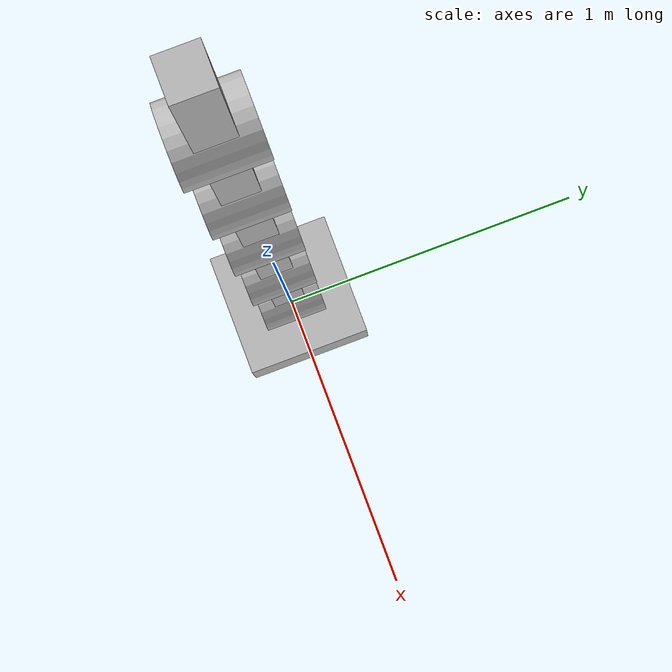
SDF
<?xml version='1.0'?>
<sdf version="1.4">
<model name="my_model">
  <static>false</static>
  <link name="base">
            <pose>0 0 .1 0 0 0</pose>
            <inertial>
                <pose>0 0 0 0 0 0</pose>
                <inertia>
                    <ixx>0.01</ixx>
                    <ixy>0</ixy>
                    <ixz>0</ixz>
                    <iyy>0.01</iyy>
                    <iyz>0</iyz>
                    <izz>0.01</izz>
                </inertia>
                <mass>10</mass>
            </inertial>
            <collision name="collision">
                <geometry>
                    <box>
                        <size>0.4 0.4 0.2</size>
                    </box>
                </geometry>
            </collision>
            <visual name="visual">
                <geometry>
                    <box>
                        <size>0.4 0.4 0.2</size>
                    </box>
                </geometry>
            </visual>
        </link>
  <link name="joint1">
        <pose>0 0 0.3 0 1.5707 1.5707</pose>
        <collision name="collision">
          <geometry>
            <cylinder>
              <radius>.1</radius>
              <length>.2</length>
            </cylinder>
          </geometry>
        </collision>
        <visual name="visual">
          <geometry>
            <cylinder>
              <radius>.1</radius>
              <length>.2</length>
            </cylinder>
          </geometry>
        </visual>
      </link>
    <link name="link">
     <pose>0 0 .66 0 0 0</pose>
      <inertial>
        <mass>.25</mass>
        <inertia> <!-- interias are tricky to compute -->
          <ixx>0.083</ixx>       <!-- for a box: ixx = 0.083 * mass * (y*y + z*z) -->
          <ixy>0.0</ixy>         <!-- for a box: ixy = 0 -->
          <ixz>0.0</ixz>         <!-- for a box: ixz = 0 -->
          <iyy>0.083</iyy>       <!-- for a box: iyy = 0.083 * mass * (x*x + z*z) -->
          <iyz>0.0</iyz>         <!-- for a box: iyz = 0 -->
          <izz>0.083</izz>       <!-- for a box: izz = 0.083 * mass * (x*x + y*y) -->
        </inertia>
      </inertial>
      <collision name="collision">
        <geometry>
          <box>
            <size>.1 .1 .5</size>
          </box>
        </geometry>
      </collision>
      <visual name="visual">
        <geometry>
          <box>
            <size>.1 .1 .5</size>
          </box>
        </geometry>
      </visual>
    </link>
  <link name="joint2">
        <pose>0 0 1.01 0 1.5707 1.5707</pose>
        <collision name="collision">
          <geometry>
            <cylinder>
              <radius>.1</radius>
              <length>.2</length>
            </cylinder>
          </geometry>
        </collision>
        <visual name="visual">
          <geometry>
            <cylinder>
              <radius>.1</radius>
              <length>.2</length>
            </cylinder>
          </geometry>
        </visual>
      </link>
  <link name="link1">
        <pose>0 0 1.37 0 0 0</pose>
        <inertial>
        <mass>.2</mass>
        <inertia>
          <ixx>0.083</ixx>
          <ixy>0.0</ixy>
          <ixz>0.0</ixz>
          <iyy>0.083</iyy>
          <iyz>0.0</iyz>
          <izz>0.083</izz>
        </inertia>
      </inertial>
      <collision name="collision1">
        <geometry>
          <box>
            <size>.1 .1 .5</size>
          </box>
        </geometry>
      </collision>
      <visual name="visual1">
        <geometry>
          <box>
            <size>.1 .1 .5</size>
          </box>
        </geometry>
      </visual>
    </link>
  <link name="joint3">
        <pose>0 0 1.72 0 1.5707 1.5707</pose>
        <collision name="collision">
          <geometry>
            <cylinder>
              <radius>.1</radius>
              <length>.2</length>
            </cylinder>
          </geometry>
        </collision>
        <visual name="visual">
          <geometry>
            <cylinder>
              <radius>.1</radius>
              <length>.2</length>
            </cylinder>
          </geometry>
        </visual>
      </link>
  <link name="link2">
        <pose>0 0 2.07 0 0 0</pose>
        <inertial>
        <mass>.2</mass>
        <inertia>
          <ixx>0.083</ixx>
          <ixy>0.0</ixy>
          <ixz>0.0</ixz>
          <iyy>0.083</iyy>
          <iyz>0.0</iyz>
          <izz>0.083</izz>
        </inertia>
      </inertial>
      <collision name="collision2">
        <geometry>
          <box>
            <size>.1 .1 .5</size>
          </box>
        </geometry>
      </collision>
      <visual name="visual2">
        <geometry>
          <box>
            <size>.1 .1 .5</size>
          </box>
        </geometry>
      </visual>
    </link>
  <link name="joint4">
        <pose>0 0 2.42 0 1.5707 1.5707</pose>
        <collision name="collision">
          <geometry>
            <cylinder>
              <radius>.1</radius>
              <length>.2</length>
            </cylinder>
          </geometry>
        </collision>
        <visual name="visual">
          <geometry>
            <cylinder>
              <radius>.1</radius>
              <length>.2</length>
            </cylinder>
          </geometry>
        </visual>
      </link>
  <link name="link3">
        <pose>0 0 2.78 0 0 0</pose>
        <inertial>
        <mass>.2</mass>
        <inertia>
          <ixx>0.083</ixx>
          <ixy>0.0</ixy>
          <ixz>0.0</ixz>
          <iyy>0.083</iyy>
          <iyz>0.0</iyz>
          <izz>0.083</izz>
        </inertia>
      </inertial>
      <collision name="collision3">
        <geometry>
          <box>
            <size>.1 .1 .5</size>
          </box>
        </geometry>
      </collision>
      <visual name="visual3">
        <geometry>
          <box>
            <size>.1 .1 .5</size>
          </box>
        </geometry>
      </visual>
    </link>
  <link name="joint5">
        <pose>0 0 3.13 0 1.5707 1.5707</pose>
        <collision name="collision">
          <geometry>
            <cylinder>
              <radius>.1</radius>
              <length>.2</length>
            </cylinder>
          </geometry>
        </collision>
        <visual name="visual">
          <geometry>
            <cylinder>
              <radius>.1</radius>
              <length>.2</length>
            </cylinder>
          </geometry>
        </visual>
      </link>

  <link name="link4">
        <pose>0 0 3.48 0 0 0</pose>
        <inertial>
        <mass>.2</mass>
        <inertia>
          <ixx>0.083</ixx>
          <ixy>0.0</ixy>
          <ixz>0.0</ixz>
          <iyy>0.083</iyy>
          <iyz>0.0</iyz>
          <izz>0.083</izz>
        </inertia>
      </inertial>
      <collision name="collision4">
        <geometry>
          <box>
            <size>.1 .1 .5</size>
          </box>
        </geometry>
      </collision>
      <visual name="visual4">
        <geometry>
          <box>
            <size>.1 .1 .5</size>
          </box>
        </geometry>
      </visual>
    </link>
  <joint name="base" type="revolute">
            <pose>0 0 0 0 0 0</pose>
            <child>base</child>
            <parent>world</parent>
            <axis>
                <limit>
                    <lower>0</lower>
                    <upper>0</upper>
                </limit>
                <xyz>1 0 0</xyz>
            </axis>
        </joint>

  <joint name="joint1" type="revolute">
              <pose>0 0 0 0 0 0</pose>
            <child>joint1</child>
            <parent>base</parent>
            <axis>
                <limit>
                    <lower>-.5</lower>
                    <upper>.5</upper>
                </limit>
                <xyz>0 1 0</xyz>
            </axis>
        </joint>
  <joint name="link-join1" type="revolute">
            <pose>0 0 -0.05 0 0 0</pose>
            <child>link</child>
            <parent>joint1</parent>
            <axis>
                <limit>
                    <lower>0</lower>
                    <upper>0</upper>
                </limit>
                <xyz>0 1 0</xyz>
            </axis>
        </joint>
  <joint name="joint2" type="revolute">
              <pose>0 0 -0.05 0 0 0</pose>
            <child>joint2</child>
            <parent>link</parent>
            <axis>
                <limit>
                    <lower>-1</lower>
                    <upper>1</upper>
                </limit>
                <xyz>0 1 0</xyz>
            </axis>
        </joint>
  <joint name="link1-joint2" type="revolute">
            <pose>0 0 -0.05 0 0 0</pose>
            <child>link1</child>
            <parent>joint2</parent>
            <axis>
                <limit>
                    <lower>0</lower>
                    <upper>0</upper>
                </limit>
                <xyz>0 1 0</xyz>
            </axis>
        </joint>
  <joint name="joint3" type="revolute">
              <pose>0 0 -0.05 0 0 0</pose>
            <child>joint3</child>
            <parent>link1</parent>
            <axis>
                <limit>
                    <lower>-.5</lower>
                    <upper>0.5</upper>
                </limit>
                <xyz>0 1 0</xyz>
            </axis>
        </joint>
  <joint name="link2-joint3" type="revolute">
            <pose>0 0 -0.05 0 0 0</pose>
            <child>link2</child>
            <parent>joint3</parent>
            <axis>
                <limit>
                    <lower>0</lower>
                    <upper>0</upper>
                </limit>
                <xyz>0 1 0</xyz>
            </axis>
        </joint>
   <joint name="joint4" type="revolute">
              <pose>0 0 -0.05 0 0 0</pose>
            <child>joint4</child>
            <parent>link2</parent>
            <axis>
                <limit>
                    <lower>0</lower>
                    <upper>0</upper>
                </limit>
                <xyz>0 1 0</xyz>
            </axis>
        </joint>
  <joint name="link3-joint4" type="revolute">
            <pose>0 0 -0.05 0 0 0</pose>
            <child>link3</child>
            <parent>joint4</parent>
            <axis>
                <limit>
                    <lower>0</lower>
                    <upper>0</upper>
                </limit>
                <xyz>0 1 0</xyz>
            </axis>
        </joint>
  <joint name="joint5" type="revolute">
           <pose>0 0 -0.05 0 0 0</pose>
            <child>joint5</child>
            <parent>link3</parent>
            <axis>
                <limit>
                    <lower>0</lower>
                    <upper>0</upper>
                </limit>
                <xyz>0 1 0</xyz>
            </axis>
        </joint>
   <joint name="link4-joint5" type="revolute">
            <pose>0 0 -0.05 0 0 0</pose>
            <child>link4</child>
            <parent>joint5</parent>
            <axis>
                <limit>
                    <lower>0</lower>
                    <upper>0</upper>
                </limit>
                <xyz>0 1 0</xyz>
            </axis>
        </joint>
  <plugin name="hello_world" filename="libhello_world.so"/>
  </model>
</sdf>
